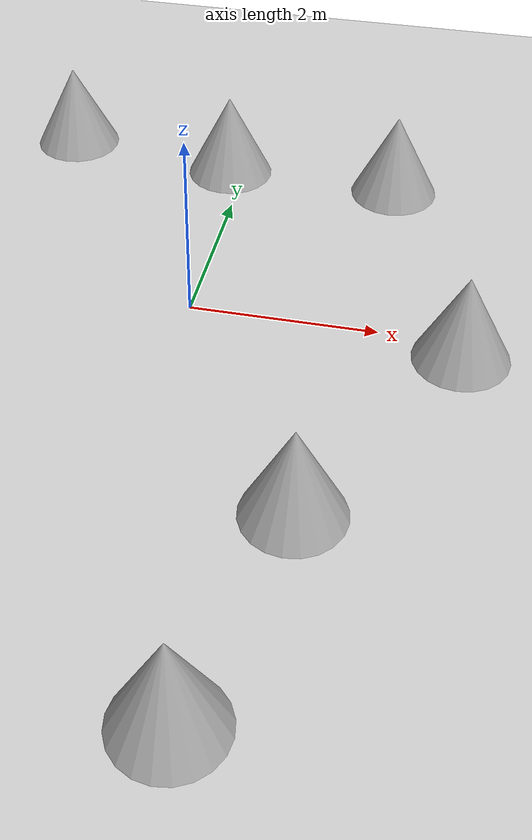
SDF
<?xml version="1.0"?>
<sdf version="1.6">
  <world name="default">
    <plugin
      filename="gz-sim-physics-system"
      name="gz::sim::systems::Physics">
    </plugin>
    <plugin
      filename="gz-sim-user-commands-system"
      name="gz::sim::systems::UserCommands">
    </plugin>
    <plugin
      filename="gz-sim-scene-broadcaster-system"
      name="gz::sim::systems::SceneBroadcaster">
    </plugin>
    <plugin
      filename="gz-sim-sensors-system"
      name="gz::sim::systems::Sensors">
      <render_engine>ogre2</render_engine>
    </plugin>
    <plugin
      filename="gz-sim-imu-system"
      name="gz::sim::systems::Imu">
    </plugin>

    <model name='ground_plane'>
      <static>1</static>
      <link name='link'>
        <collision name='collision'>
          <geometry>
            <plane>
              <normal>0 0 1</normal>
              <size>100 100</size>
            </plane>
          </geometry>
          <surface>
            <contact>
              <collide_bitmask>65535</collide_bitmask>
            </contact>
            <friction>
              <ode>
                <mu>1000</mu>
                <mu2>1000</mu2>
              </ode>
              <torsional>
                <ode/>
              </torsional>
            </friction>
            <bounce/>
          </surface>
          <max_contacts>10</max_contacts>
        </collision>
        <visual name='visual'>
          <cast_shadows>0</cast_shadows>
          <geometry>
            <plane>
              <normal>0 0 1</normal>
              <size>100 100</size>
            </plane>
          </geometry>
          <material>
            <script>
              <uri>file://media/materials/scripts/gazebo.material</uri>
              <name>Gazebo/Grey</name>
            </script>
          </material>
        </visual>
        <self_collide>0</self_collide>
        <enable_wind>0</enable_wind>
        <kinematic>0</kinematic>
      </link>
    </model>

     <model name='cone'>
      <pose>-2.2244375440973769 3.0198236048259277 0.5 0 0 0</pose>
      <link name='cone_link'>
        <inertial>
          <inertia>
            <ixx>0.074999999999999997</ixx>
            <ixy>0</ixy>
            <ixz>0</ixz>
            <iyy>0.074999999999999997</iyy>
            <iyz>0</iyz>
            <izz>0.074999999999999997</izz>
          </inertia>
          <mass>1</mass>
          <pose>0 0 0 0 0 0</pose>
        </inertial>
        <collision name='cone_collision'>
          <geometry>
            <cone>
              <radius>0.5</radius>
              <length>1</length>
            </cone>
          </geometry>
          <surface>
            <friction>
              <ode/>
            </friction>
            <bounce/>
            <contact/>
          </surface>
        </collision>
        <visual name='cone_visual'>
          <geometry>
            <cone>
              <radius>0.5</radius>
              <length>1</length>
            </cone>
          </geometry>
          <material>
            <ambient>0.300000012 0.300000012 0.300000012 1</ambient>
            <diffuse>0.699999988 0.699999988 0.699999988 1</diffuse>
            <specular>1 1 1 1</specular>
          </material>
        </visual>
        <pose>0 0 0 0 0 0</pose>
        <enable_wind>false</enable_wind>
      </link>
      <static>false</static>
      <self_collide>false</self_collide>
    </model>

     <model name='cone_0'>
      <pose>1.823265576035805 2.6790986503934695 0.5 0 0 0</pose>
      <link name='cone_link'>
        <inertial>
          <inertia>
            <ixx>0.074999999999999997</ixx>
            <ixy>0</ixy>
            <ixz>0</ixz>
            <iyy>0.074999999999999997</iyy>
            <iyz>0</iyz>
            <izz>0.074999999999999997</izz>
          </inertia>
          <mass>1</mass>
          <pose>0 0 0 0 0 0</pose>
        </inertial>
        <collision name='cone_collision'>
          <geometry>
            <cone>
              <radius>0.5</radius>
              <length>1</length>
            </cone>
          </geometry>
          <surface>
            <friction>
              <ode/>
            </friction>
            <bounce/>
            <contact/>
          </surface>
        </collision>
        <visual name='cone_visual'>
          <geometry>
            <cone>
              <radius>0.5</radius>
              <length>1</length>
            </cone>
          </geometry>
          <material>
            <ambient>0.300000012 0.300000012 0.300000012 1</ambient>
            <diffuse>0.699999988 0.699999988 0.699999988 1</diffuse>
            <specular>1 1 1 1</specular>
          </material>
        </visual>
        <pose>0 0 0 0 0 0</pose>
        <enable_wind>false</enable_wind>
      </link>
      <static>false</static>
      <self_collide>false</self_collide>
    </model>

    <model name='cone_1'>
      <pose>1.6088307816206182 -2.6505754649970097 0.5 0 0 0</pose>
      <link name='cone_link'>
        <inertial>
          <inertia>
            <ixx>0.074999999999999997</ixx>
            <ixy>0</ixy>
            <ixz>0</ixz>
            <iyy>0.074999999999999997</iyy>
            <iyz>0</iyz>
            <izz>0.074999999999999997</izz>
          </inertia>
          <mass>1</mass>
          <pose>0 0 0 0 0 0</pose>
        </inertial>
        <collision name='cone_collision'>
          <geometry>
            <cone>
              <radius>0.5</radius>
              <length>1</length>
            </cone>
          </geometry>
          <surface>
            <friction>
              <ode/>
            </friction>
            <bounce/>
            <contact/>
          </surface>
        </collision>
        <visual name='cone_visual'>
          <geometry>
            <cone>
              <radius>0.5</radius>
              <length>1</length>
            </cone>
          </geometry>
          <material>
            <ambient>0.300000012 0.300000012 0.300000012 1</ambient>
            <diffuse>0.699999988 0.699999988 0.699999988 1</diffuse>
            <specular>1 1 1 1</specular>
          </material>
        </visual>
        <pose>0 0 0 0 0 0</pose>
        <enable_wind>false</enable_wind>
      </link>
      <static>false</static>
      <self_collide>false</self_collide>
    </model>

    <model name='cone_2'>
      <pose>2.8655871551316032 -0.2343507638601634 0.5 0 0 0</pose>
      <link name='cone_link'>
        <inertial>
          <inertia>
            <ixx>0.074999999999999997</ixx>
            <ixy>0</ixy>
            <ixz>0</ixz>
            <iyy>0.074999999999999997</iyy>
            <iyz>0</iyz>
            <izz>0.074999999999999997</izz>
          </inertia>
          <mass>1</mass>
          <pose>0 0 0 0 0 0</pose>
        </inertial>
        <collision name='cone_collision'>
          <geometry>
            <cone>
              <radius>0.5</radius>
              <length>1</length>
            </cone>
          </geometry>
          <surface>
            <friction>
              <ode/>
            </friction>
            <bounce/>
            <contact/>
          </surface>
        </collision>
        <visual name='cone_visual'>
          <geometry>
            <cone>
              <radius>0.5</radius>
              <length>1</length>
            </cone>
          </geometry>
          <material>
            <ambient>0.300000012 0.300000012 0.300000012 1</ambient>
            <diffuse>0.699999988 0.699999988 0.699999988 1</diffuse>
            <specular>1 1 1 1</specular>
          </material>
        </visual>
        <pose>0 0 0 0 0 0</pose>
        <enable_wind>false</enable_wind>
      </link>
      <static>false</static>
      <self_collide>false</self_collide>
    </model>

    <model name='cone_3'>
      <pose>1.0967244165853813 -4.9075483554939678 0.5 0 0 0</pose>
      <link name='cone_link'>
        <inertial>
          <inertia>
            <ixx>0.074999999999999997</ixx>
            <ixy>0</ixy>
            <ixz>0</ixz>
            <iyy>0.074999999999999997</iyy>
            <iyz>0</iyz>
            <izz>0.074999999999999997</izz>
          </inertia>
          <mass>1</mass>
          <pose>0 0 0 0 0 0</pose>
        </inertial>
        <collision name='cone_collision'>
          <geometry>
            <cone>
              <radius>0.5</radius>
              <length>1</length>
            </cone>
          </geometry>
          <surface>
            <friction>
              <ode/>
            </friction>
            <bounce/>
            <contact/>
          </surface>
        </collision>
        <visual name='cone_visual'>
          <geometry>
            <cone>
              <radius>0.5</radius>
              <length>1</length>
            </cone>
          </geometry>
          <material>
            <ambient>0.300000012 0.300000012 0.300000012 1</ambient>
            <diffuse>0.699999988 0.699999988 0.699999988 1</diffuse>
            <specular>1 1 1 1</specular>
          </material>
        </visual>
        <pose>0 0 0 0 0 0</pose>
        <enable_wind>false</enable_wind>
      </link>
      <static>false</static>
      <self_collide>false</self_collide>
    </model>

    <model name='cone_4'>
      <pose>-0.18432157375734803 2.7229157391071626 0.5 0 0 0</pose>
      <link name='cone_link'>
        <inertial>
          <inertia>
            <ixx>0.074999999999999997</ixx>
            <ixy>0</ixy>
            <ixz>0</ixz>
            <iyy>0.074999999999999997</iyy>
            <iyz>0</iyz>
            <izz>0.074999999999999997</izz>
          </inertia>
          <mass>1</mass>
          <pose>0 0 0 0 0 0</pose>
        </inertial>
        <collision name='cone_collision'>
          <geometry>
            <cone>
              <radius>0.5</radius>
              <length>1</length>
            </cone>
          </geometry>
          <surface>
            <friction>
              <ode/>
            </friction>
            <bounce/>
            <contact/>
          </surface>
        </collision>
        <visual name='cone_visual'>
          <geometry>
            <cone>
              <radius>0.5</radius>
              <length>1</length>
            </cone>
          </geometry>
          <material>
            <ambient>0.300000012 0.300000012 0.300000012 1</ambient>
            <diffuse>0.699999988 0.699999988 0.699999988 1</diffuse>
            <specular>1 1 1 1</specular>
          </material>
        </visual>
        <pose>0 0 0 0 0 0</pose>
        <enable_wind>false</enable_wind>
      </link>
      <static>false</static>
      <self_collide>false</self_collide>
    </model>

    <include>
      <uri>
        https://fuel.gazebosim.org/1.0/OpenRobotics/models/Sun
      </uri>
    </include>

    <scene>
      <shadows>false</shadows>
    </scene>

    <gui fullscreen='0'>
      <camera name='user_camera'>
        <pose frame=''>0.319654 -0.235002 9.29441 0 1.5138 0.009599</pose>
        <view_controller>orbit</view_controller>
        <projection_type>perspective</projection_type>
      </camera>
    </gui>

    <physics type='ode'>
      <max_step_size>0.001</max_step_size>
      <real_time_factor>1</real_time_factor>
      <real_time_update_rate>1000</real_time_update_rate>
    </physics>

  </world>
</sdf>
